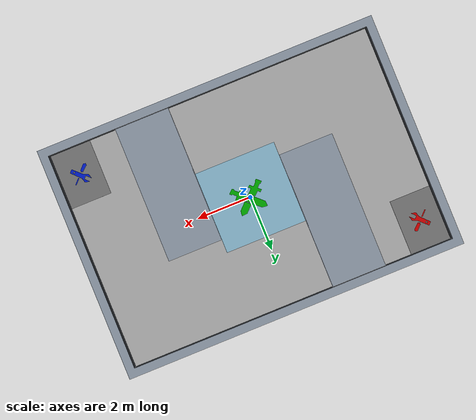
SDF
<?xml version="1.0"?>
<sdf version="1.7">
  <model name="rmul_2026">
    <static>true</static>
    <link name="body">
      <visual name="part_0">
        <geometry><mesh><uri>model://rmul_2026/meshes/visual_parts/part_0.stl</uri></mesh></geometry>
        <material><ambient>0.00000 0.11765 0.84314 1</ambient><diffuse>0.00000 0.11765 0.84314 1</diffuse></material>
      </visual>
      <visual name="part_1">
        <geometry><mesh><uri>model://rmul_2026/meshes/visual_parts/part_1.stl</uri></mesh></geometry>
        <material><ambient>0.00000 0.70588 0.00000 1</ambient><diffuse>0.00000 0.70588 0.00000 1</diffuse></material>
      </visual>
      <visual name="part_2">
        <geometry><mesh><uri>model://rmul_2026/meshes/visual_parts/part_2.stl</uri></mesh></geometry>
        <material><ambient>0.12941 0.14118 0.15686 1</ambient><diffuse>0.12941 0.14118 0.15686 1</diffuse></material>
      </visual>
      <visual name="part_3">
        <geometry><mesh><uri>model://rmul_2026/meshes/visual_parts/part_3.stl</uri></mesh></geometry>
        <material><ambient>0.49020 0.49020 0.49020 1</ambient><diffuse>0.49020 0.49020 0.49020 1</diffuse></material>
      </visual>
      <visual name="part_4">
        <geometry><mesh><uri>model://rmul_2026/meshes/visual_parts/part_4.stl</uri></mesh></geometry>
        <material><ambient>0.56863 0.76471 0.86275 1</ambient><diffuse>0.56863 0.76471 0.86275 1</diffuse></material>
      </visual>
      <visual name="part_5">
        <geometry><mesh><uri>model://rmul_2026/meshes/visual_parts/part_5.stl</uri></mesh></geometry>
        <material><ambient>0.59216 0.63922 0.69804 1</ambient><diffuse>0.59216 0.63922 0.69804 1</diffuse></material>
      </visual>
      <visual name="part_6">
        <geometry><mesh><uri>model://rmul_2026/meshes/visual_parts/part_6.stl</uri></mesh></geometry>
        <material><ambient>0.72549 0.72549 0.72549 1</ambient><diffuse>0.72549 0.72549 0.72549 1</diffuse></material>
      </visual>
      <visual name="part_7">
        <geometry><mesh><uri>model://rmul_2026/meshes/visual_parts/part_7.stl</uri></mesh></geometry>
        <material><ambient>0.86275 0.00000 0.00000 1</ambient><diffuse>0.86275 0.00000 0.00000 1</diffuse></material>
      </visual>
      <collision name="field_collision">
        <geometry><mesh><uri>model://rmul_2026/meshes/rmul_2026.stl</uri></mesh></geometry>
      </collision>
    </link>
  </model>
</sdf>
